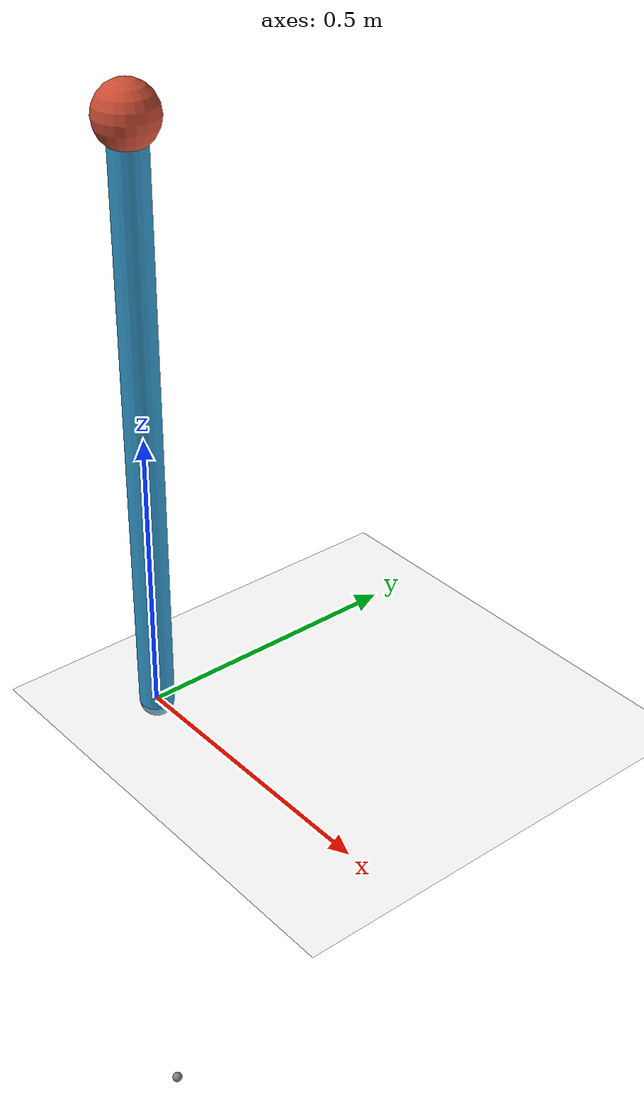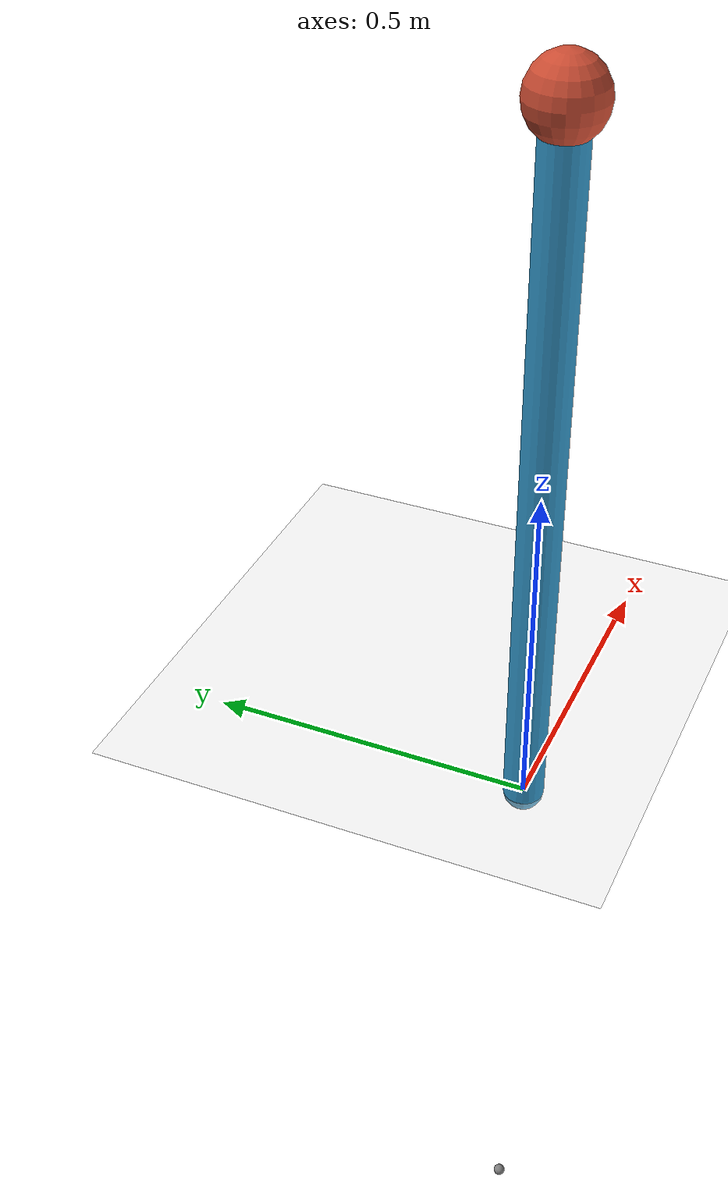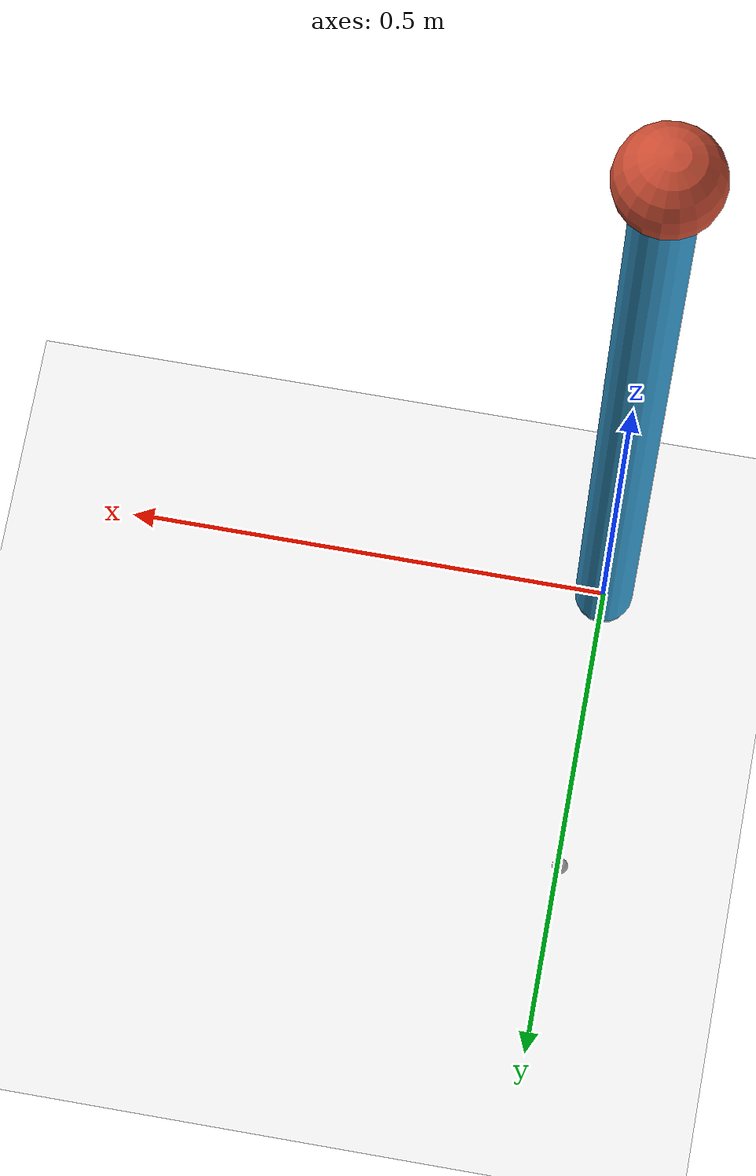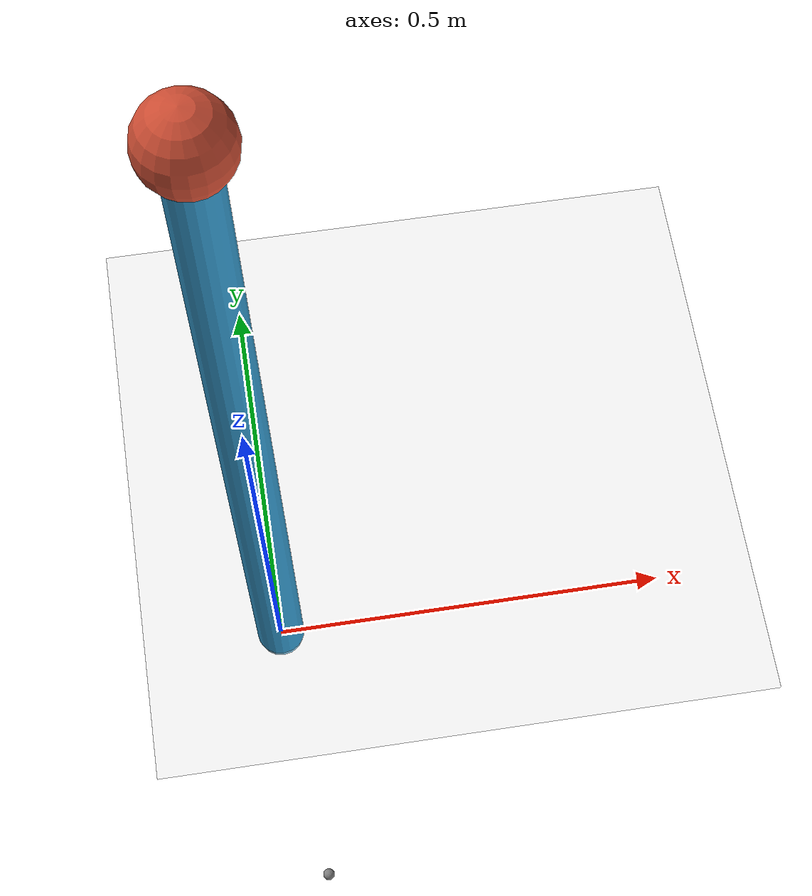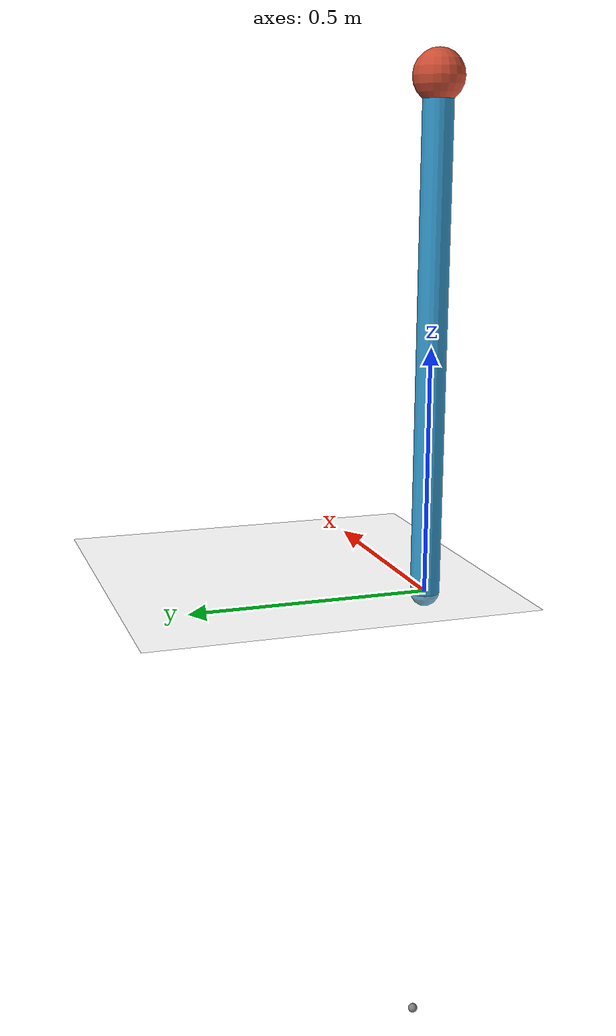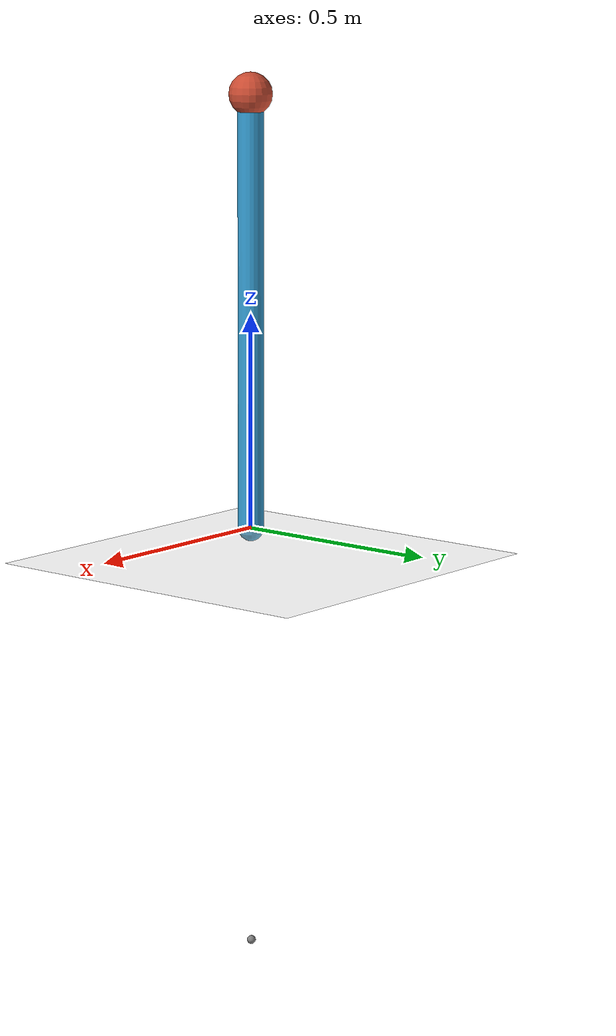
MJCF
<?xml version="1.0" encoding="utf-8"?>
<mujoco model="inverted_pendulum">
  <compiler angle="radian"/>
  <option timestep="0.002" gravity="0 0 -9.81" integrator="RK4"/>
  <size nconmax="50" njmax="50" nstack="300000"/>

  <default>
    <joint damping="0.02"/>
    <geom rgba="0.2 0.6 0.8 1"/>
  </default>

  <worldbody>
    <!-- Visual ground grid (optional) -->
    <geom name="ground" type="plane" pos="0 0 0" size="5 5 0.1" rgba="0.9 0.9 0.9 1"/>

    <!-- Hinge at the origin; pendulum initially pointing up along Z -->
    <body name="pendulum" pos="0 0 0">
      <joint name="hinge" type="hinge" axis="0 1 0" limited= "false"/>
      <!-- 1 m long capsule (tip at z=1). Radius 0.03 m. Density sets mass automatically. -->
      <geom name="rod" type="capsule" fromto="0 0 0  0 0 1.0" size="0.03" density="1200"/>
      <!-- A small bob at the tip-->
      <geom name="bob" type="sphere" pos="0 0 1.0" size="0.05" density="1800" rgba="0.8 0.3 0.2 1"/>
      <site name="tip" pos="0 0 -1.0" size="0.01"/>
    </body>
  </worldbody>

<actuator>
  <motor name="hinge_motor" joint="hinge" gear="5"/>
</actuator>

</mujoco>
